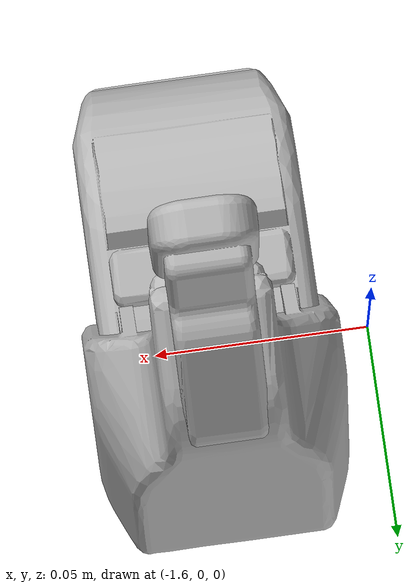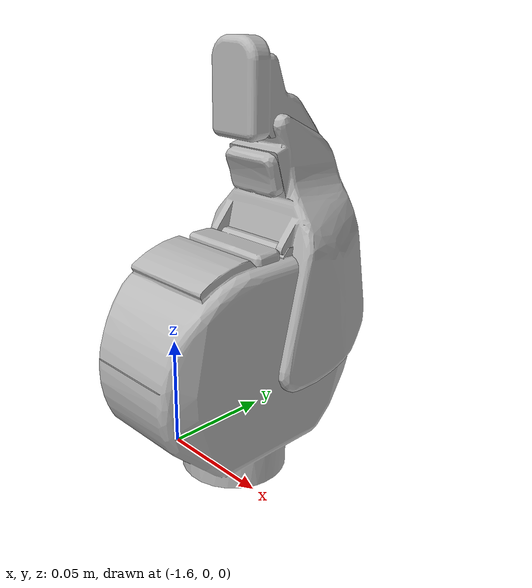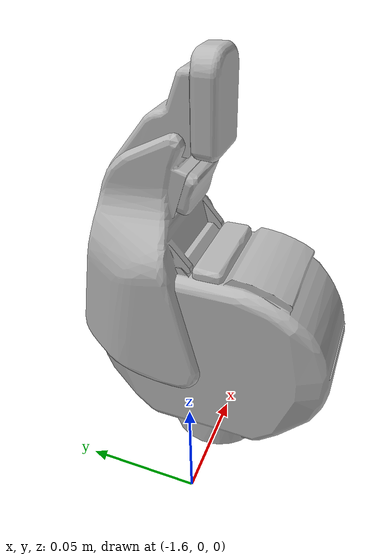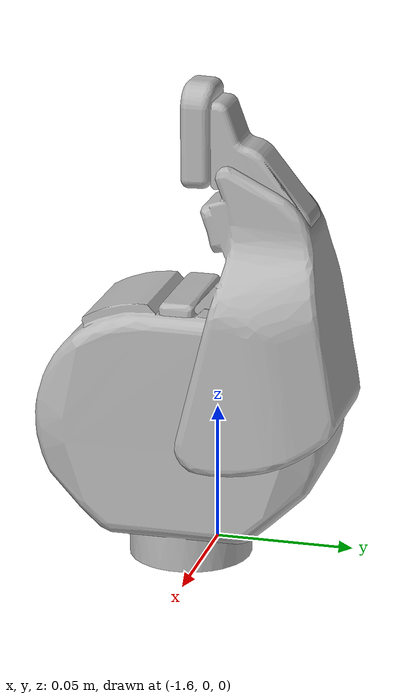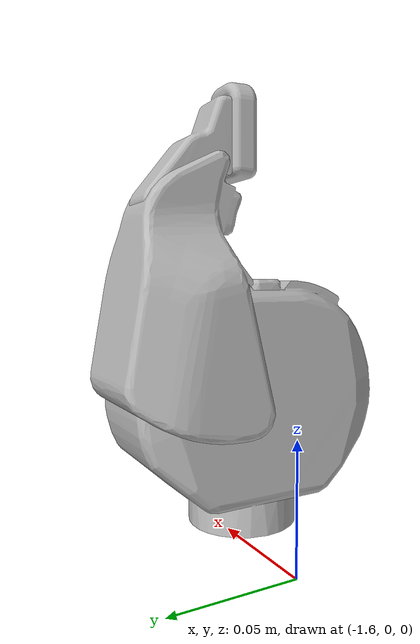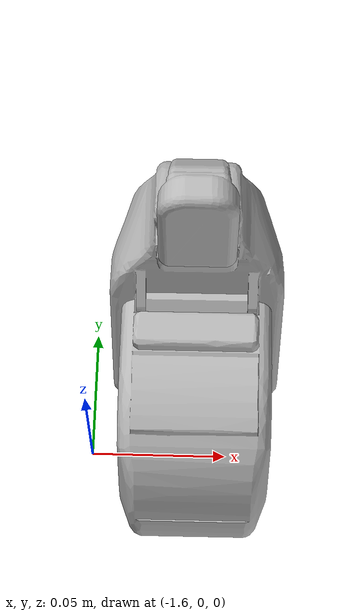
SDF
<?xml version="1.0" ?>
<sdf version='1.4'>
  <model name='pr2_gripper'>
    <pose>-0.771000 0.188000 -0.790675 3.141593 -1.570796 3.141593</pose>
    <link name='r_wrist_roll_link'>
      <pose>0.771000 -0.188000 0.790675 0.000000 -0.000000 0.000000</pose>
      <inertial>
        <pose>0.056408 0.000451 -0.001014 0.000000 -0.000000 0.000000</pose>
        <inertia>
          <ixx>0.011352</ixx>
          <ixy>-0.000016</ixy>
          <ixz>-0.000001</ixz>
          <iyy>0.011677</iyy>
          <iyz>-0.000001</iyz>
          <izz>0.011866</izz>
        </inertia>
        <mass>0.681070</mass>
      </inertial>
      <collision name='r_wrist_roll_link_geom'>
        <pose>0.000000 0.000000 0.000000 0.000000 -0.000000 0.000000</pose>
        <geometry>
          <mesh>
            <uri>model://pr2/meshes/forearm_v0/wrist_roll_L.stl</uri>
            <scale>1.000000 1.000000 1.000000</scale>
            <uri>__default__</uri>
          </mesh>
        </geometry>
      </collision>
      <visual name='r_wrist_roll_link_geom_r_gripper_palm_link_visual'>
        <pose>0.000000 0.000000 0.000000 0.000000 -0.000000 0.000000</pose>
        <geometry>
          <mesh>
            <uri>model://pr2/meshes/gripper_v0/gripper_palm.dae</uri>
            <scale>1.000000 1.000000 1.000000</scale>
            <uri>__default__</uri>
          </mesh>
        </geometry>
        <cast_shadows>1</cast_shadows>
        <laser_retro>0.000000</laser_retro>
        <transparency>0.000000</transparency>
      </visual>
      <gravity>1</gravity>
      <self_collide>0</self_collide>
      <kinematic>0</kinematic>
      <velocity_decay/>
    </link>
    <link name='r_gripper_l_finger_link'>
      <pose>0.847910 -0.178000 0.790675 0.000000 -0.000000 0.000000</pose>
      <inertial>
        <pose>0.035980 0.017300 -0.001640 0.000000 -0.000000 0.000000</pose>
        <inertia>
          <ixx>0.000078</ixx>
          <ixy>0.000001</ixy>
          <ixz>-0.000010</ixz>
          <iyy>0.000197</iyy>
          <iyz>-0.000003</iyz>
          <izz>0.000181</izz>
        </inertia>
        <mass>0.171260</mass>
      </inertial>
      <collision name='r_gripper_l_finger_link_geom'>
        <pose>0.000000 0.000000 0.000000 0.000000 -0.000000 0.000000</pose>
        <geometry>
          <mesh>
            <uri>model://pr2/meshes/gripper_v0/l_finger.stl</uri>
            <scale>1.000000 1.000000 1.000000</scale>
            <uri>__default__</uri>
          </mesh>
        </geometry>
        <laser_retro>0.000000</laser_retro>
      </collision>
      <visual name='r_gripper_l_finger_link_geom_visual'>
        <pose>0.000000 0.000000 0.000000 0.000000 -0.000000 0.000000</pose>
        <geometry>
          <mesh>
            <uri>model://pr2/meshes/gripper_v0/l_finger.dae</uri>
            <scale>1.000000 1.000000 1.000000</scale>
            <uri>__default__</uri>
          </mesh>
        </geometry>
      </visual>
      <gravity>1</gravity>
      <self_collide>0</self_collide>
      <kinematic>0</kinematic>
      <velocity_decay/>
    </link>
    <link name='r_gripper_l_finger_tip_link'>
      <pose>0.939280 -0.173050 0.790675 0.000000 -0.000000 0.000000</pose>
      <inertial>
        <pose>0.004230 0.002840 0.000000 0.000000 -0.000000 0.000000</pose>
        <inertia>
          <ixx>0.000008</ixx>
          <ixy>0.000006</ixy>
          <ixz>0.000000</ixz>
          <iyy>0.000010</iyy>
          <iyz>0.000000</iyz>
          <izz>0.000015</izz>
        </inertia>
        <mass>0.044190</mass>
      </inertial>
      <collision name='r_gripper_l_finger_tip_link_geom'>
        <pose>0.000000 0.000000 0.000000 0.000000 -0.000000 0.000000</pose>
        <geometry>
          <mesh>
            <uri>model://pr2/meshes/gripper_v0/l_finger_tip.stl</uri>
            <scale>1.000000 1.000000 1.000000</scale>
            <uri>__default__</uri>
          </mesh>
        </geometry>
        <laser_retro>0.000000</laser_retro>
      </collision>
      <visual name='r_gripper_l_finger_tip_link_geom_visual'>
        <pose>0.000000 0.000000 0.000000 0.000000 -0.000000 0.000000</pose>
        <geometry>
          <mesh>
            <uri>model://pr2/meshes/gripper_v0/l_finger_tip.dae</uri>
            <scale>1.000000 1.000000 1.000000</scale>
            <uri>__default__</uri>
          </mesh>
        </geometry>
        <cast_shadows>1</cast_shadows>
        <laser_retro>0.000000</laser_retro>
        <transparency>0.000000</transparency>
      </visual>
      <gravity>1</gravity>
      <self_collide>0</self_collide>
      <kinematic>0</kinematic>
      <velocity_decay/>
    </link>
    <link name='r_gripper_l_parallel_link'>
      <pose>0.829910 -0.157000 0.790675 0.000000 -0.000000 0.000000</pose>
      <inertial>
        <pose>0.035980 0.017300 -0.001640 0.000000 -0.000000 0.000000</pose>
        <inertia>
          <ixx>0.000078</ixx>
          <ixy>0.000001</ixy>
          <ixz>-0.000010</ixz>
          <iyy>0.000197</iyy>
          <iyz>-0.000003</iyz>
          <izz>0.000181</izz>
        </inertia>
        <mass>0.171260</mass>
      </inertial>
      <gravity>1</gravity>
      <self_collide>0</self_collide>
      <kinematic>0</kinematic>
      <velocity_decay/>
    </link>
    <joint name='r_gripper_l_finger_joint' type='revolute'>
      <pose>0.000000 0.000000 0.000000 0.000000 -0.000000 0.000000</pose>
      <parent>r_wrist_roll_link</parent>
      <child>r_gripper_l_finger_link</child>
      <axis>
        <dynamics>
          <damping>0.020000</damping>
          <friction>0.000000</friction>
        </dynamics>
        <limit>
          <lower>0.000000</lower>
          <upper>0.548000</upper>
          <effort>0.000000</effort>
          <velocity>0.000000</velocity>
        </limit>
        <xyz>0.000000 0.000000 1.000000</xyz>
      </axis>
    </joint>
    <joint name='r_gripper_l_finger_tip_joint' type='revolute'>
      <pose>0.000000 0.000000 0.000000 0.000000 -0.000000 0.000000</pose>
      <parent>r_gripper_l_finger_link</parent>
      <child>r_gripper_l_finger_tip_link</child>
      <axis>
        <dynamics>
          <damping>0.001000</damping>
          <friction>0.000000</friction>
        </dynamics>
        <limit>
          <lower>0.000000</lower>
          <upper>0.548000</upper>
          <effort>0.000000</effort>
          <velocity>0.000000</velocity>
        </limit>
        <xyz>0.000000 0.000000 -1.000000</xyz>
      </axis>
    </joint>
    <joint name='r_gripper_l_parallel_root_joint' type='revolute'>
      <pose>0.058910 0.031000 0.000000 0.000000 -0.000000 0.000000</pose>
      <parent>r_gripper_l_parallel_link</parent>
      <child>r_wrist_roll_link</child>
      <axis>
        <dynamics>
          <damping>0.200000</damping>
          <friction>0.000000</friction>
        </dynamics>
        <limit>
          <lower>-10000000000000000.000000</lower>
          <upper>10000000000000000.000000</upper>
          <effort>0.000000</effort>
          <velocity>0.000000</velocity>
        </limit>
        <xyz>0.000000 0.000000 1.000000</xyz>
      </axis>
    </joint>
    <joint name='r_gripper_l_parallel_tip_joint' type='revolute'>
      <pose>-0.018000 0.021000 0.000000 0.000000 -0.000000 0.000000</pose>
      <parent>r_gripper_l_parallel_link</parent>
      <child>r_gripper_l_finger_tip_link</child>
      <axis>
        <dynamics>
          <damping>0.000000</damping>
          <friction>0.000000</friction>
        </dynamics>
        <limit>
          <lower>-10000000000000000.000000</lower>
          <upper>10000000000000000.000000</upper>
          <effort>0.000000</effort>
          <velocity>0.000000</velocity>
        </limit>
        <xyz>0.000000 0.000000 1.000000</xyz>
      </axis>
    </joint>
    <static>0</static>
  </model>
</sdf>
